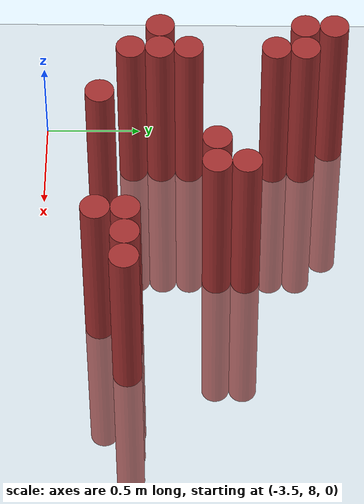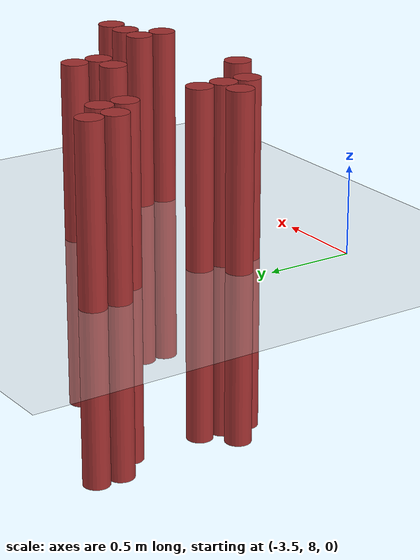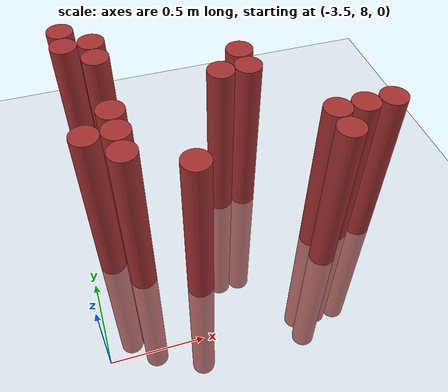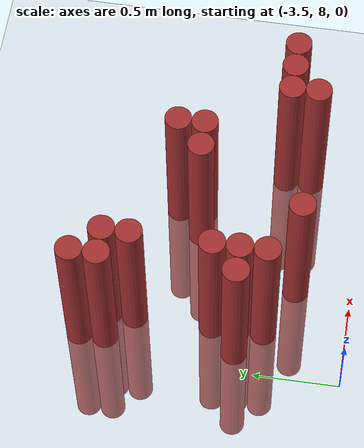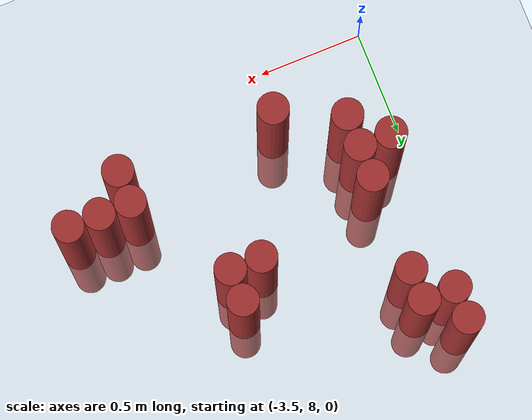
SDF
<sdf version="1.6">
 <world name="default">
  <model name="ground_plane">
   <static>1</static>
   <link name="link">
    <collision name="collision">
     <geometry><plane><normal>0 0 1</normal><size>100 100</size></plane></geometry>
     <surface><friction><ode><mu>100</mu><mu2>50</mu2></ode></friction></surface>
    </collision>
    <visual name="visual">
     <cast_shadows>0</cast_shadows>
     <geometry><plane><normal>0 0 1</normal><size>100 100</size></plane></geometry>
     <material>
      <script><uri>file://media/materials/scripts/gazebo.material</uri><name>Gazebo/Grey</name></script>
     </material>
    </visual>
   </link>
  </model>
  <model name="unit_cylinder_170">
   <static>1</static>
   <pose>-3.375000 8.625000 0.000000 0.000000 0.000000 0.000000</pose>
   <link name="link">
    <inertial>
     <mass>1</mass>
     <inertia><ixx>0.145833</ixx><ixy>0</ixy><ixz>0</ixz><iyy>0.145833</iyy><iyz>0</iyz><izz>0.125</izz></inertia>
    </inertial>
    <collision name="collision">
     <geometry><cylinder><radius>0.075000</radius><length>2</length></cylinder></geometry>
    </collision>
    <visual name="visual">
     <geometry><cylinder><radius>0.075000</radius><length>2</length></cylinder></geometry>
     <material>
      <ambient>0.648000 0.192000 0.192000 1</ambient>
      <diffuse>0.648000 0.192000 0.192000 1</diffuse>
     </material>
     <material>
      <script><name>Gazebo/Grey</name><uri>file://media/materials/scripts/gazebo.material</uri></script>
     </material>
    </visual>
   </link>
  </model>
  <model name="unit_cylinder_171">
   <static>1</static>
   <pose>-3.375000 9.375000 0.000000 0.000000 0.000000 0.000000</pose>
   <link name="link">
    <inertial>
     <mass>1</mass>
     <inertia><ixx>0.145833</ixx><ixy>0</ixy><ixz>0</ixz><iyy>0.145833</iyy><iyz>0</iyz><izz>0.125</izz></inertia>
    </inertial>
    <collision name="collision">
     <geometry><cylinder><radius>0.075000</radius><length>2</length></cylinder></geometry>
    </collision>
    <visual name="visual">
     <geometry><cylinder><radius>0.075000</radius><length>2</length></cylinder></geometry>
     <material>
      <ambient>0.648000 0.192000 0.192000 1</ambient>
      <diffuse>0.648000 0.192000 0.192000 1</diffuse>
     </material>
     <material>
      <script><name>Gazebo/Grey</name><uri>file://media/materials/scripts/gazebo.material</uri></script>
     </material>
    </visual>
   </link>
  </model>
  <model name="unit_cylinder_172">
   <static>1</static>
   <pose>-3.375000 9.525000 0.000000 0.000000 0.000000 0.000000</pose>
   <link name="link">
    <inertial>
     <mass>1</mass>
     <inertia><ixx>0.145833</ixx><ixy>0</ixy><ixz>0</ixz><iyy>0.145833</iyy><iyz>0</iyz><izz>0.125</izz></inertia>
    </inertial>
    <collision name="collision">
     <geometry><cylinder><radius>0.075000</radius><length>2</length></cylinder></geometry>
    </collision>
    <visual name="visual">
     <geometry><cylinder><radius>0.075000</radius><length>2</length></cylinder></geometry>
     <material>
      <ambient>0.648000 0.192000 0.192000 1</ambient>
      <diffuse>0.648000 0.192000 0.192000 1</diffuse>
     </material>
     <material>
      <script><name>Gazebo/Grey</name><uri>file://media/materials/scripts/gazebo.material</uri></script>
     </material>
    </visual>
   </link>
  </model>
  <model name="unit_cylinder_174">
   <static>1</static>
   <pose>-3.225000 8.475000 0.000000 0.000000 0.000000 0.000000</pose>
   <link name="link">
    <inertial>
     <mass>1</mass>
     <inertia><ixx>0.145833</ixx><ixy>0</ixy><ixz>0</ixz><iyy>0.145833</iyy><iyz>0</iyz><izz>0.125</izz></inertia>
    </inertial>
    <collision name="collision">
     <geometry><cylinder><radius>0.075000</radius><length>2</length></cylinder></geometry>
    </collision>
    <visual name="visual">
     <geometry><cylinder><radius>0.075000</radius><length>2</length></cylinder></geometry>
     <material>
      <ambient>0.648000 0.192000 0.192000 1</ambient>
      <diffuse>0.648000 0.192000 0.192000 1</diffuse>
     </material>
     <material>
      <script><name>Gazebo/Grey</name><uri>file://media/materials/scripts/gazebo.material</uri></script>
     </material>
    </visual>
   </link>
  </model>
  <model name="unit_cylinder_175">
   <static>1</static>
   <pose>-3.225000 8.625000 0.000000 0.000000 0.000000 0.000000</pose>
   <link name="link">
    <inertial>
     <mass>1</mass>
     <inertia><ixx>0.145833</ixx><ixy>0</ixy><ixz>0</ixz><iyy>0.145833</iyy><iyz>0</iyz><izz>0.125</izz></inertia>
    </inertial>
    <collision name="collision">
     <geometry><cylinder><radius>0.075000</radius><length>2</length></cylinder></geometry>
    </collision>
    <visual name="visual">
     <geometry><cylinder><radius>0.075000</radius><length>2</length></cylinder></geometry>
     <material>
      <ambient>0.648000 0.192000 0.192000 1</ambient>
      <diffuse>0.648000 0.192000 0.192000 1</diffuse>
     </material>
     <material>
      <script><name>Gazebo/Grey</name><uri>file://media/materials/scripts/gazebo.material</uri></script>
     </material>
    </visual>
   </link>
  </model>
  <model name="unit_cylinder_176">
   <static>1</static>
   <pose>-3.225000 8.775000 0.000000 0.000000 0.000000 0.000000</pose>
   <link name="link">
    <inertial>
     <mass>1</mass>
     <inertia><ixx>0.145833</ixx><ixy>0</ixy><ixz>0</ixz><iyy>0.145833</iyy><iyz>0</iyz><izz>0.125</izz></inertia>
    </inertial>
    <collision name="collision">
     <geometry><cylinder><radius>0.075000</radius><length>2</length></cylinder></geometry>
    </collision>
    <visual name="visual">
     <geometry><cylinder><radius>0.075000</radius><length>2</length></cylinder></geometry>
     <material>
      <ambient>0.648000 0.192000 0.192000 1</ambient>
      <diffuse>0.648000 0.192000 0.192000 1</diffuse>
     </material>
     <material>
      <script><name>Gazebo/Grey</name><uri>file://media/materials/scripts/gazebo.material</uri></script>
     </material>
    </visual>
   </link>
  </model>
  <model name="unit_cylinder_177">
   <static>1</static>
   <pose>-3.225000 9.225000 0.000000 0.000000 0.000000 0.000000</pose>
   <link name="link">
    <inertial>
     <mass>1</mass>
     <inertia><ixx>0.145833</ixx><ixy>0</ixy><ixz>0</ixz><iyy>0.145833</iyy><iyz>0</iyz><izz>0.125</izz></inertia>
    </inertial>
    <collision name="collision">
     <geometry><cylinder><radius>0.075000</radius><length>2</length></cylinder></geometry>
    </collision>
    <visual name="visual">
     <geometry><cylinder><radius>0.075000</radius><length>2</length></cylinder></geometry>
     <material>
      <ambient>0.648000 0.192000 0.192000 1</ambient>
      <diffuse>0.648000 0.192000 0.192000 1</diffuse>
     </material>
     <material>
      <script><name>Gazebo/Grey</name><uri>file://media/materials/scripts/gazebo.material</uri></script>
     </material>
    </visual>
   </link>
  </model>
  <model name="unit_cylinder_178">
   <static>1</static>
   <pose>-3.225000 9.375000 0.000000 0.000000 0.000000 0.000000</pose>
   <link name="link">
    <inertial>
     <mass>1</mass>
     <inertia><ixx>0.145833</ixx><ixy>0</ixy><ixz>0</ixz><iyy>0.145833</iyy><iyz>0</iyz><izz>0.125</izz></inertia>
    </inertial>
    <collision name="collision">
     <geometry><cylinder><radius>0.075000</radius><length>2</length></cylinder></geometry>
    </collision>
    <visual name="visual">
     <geometry><cylinder><radius>0.075000</radius><length>2</length></cylinder></geometry>
     <material>
      <ambient>0.648000 0.192000 0.192000 1</ambient>
      <diffuse>0.648000 0.192000 0.192000 1</diffuse>
     </material>
     <material>
      <script><name>Gazebo/Grey</name><uri>file://media/materials/scripts/gazebo.material</uri></script>
     </material>
    </visual>
   </link>
  </model>
  <model name="unit_cylinder_181">
   <static>1</static>
   <pose>-2.925000 8.325000 0.000000 0.000000 0.000000 0.000000</pose>
   <link name="link">
    <inertial>
     <mass>1</mass>
     <inertia><ixx>0.145833</ixx><ixy>0</ixy><ixz>0</ixz><iyy>0.145833</iyy><iyz>0</iyz><izz>0.125</izz></inertia>
    </inertial>
    <collision name="collision">
     <geometry><cylinder><radius>0.075000</radius><length>2</length></cylinder></geometry>
    </collision>
    <visual name="visual">
     <geometry><cylinder><radius>0.075000</radius><length>2</length></cylinder></geometry>
     <material>
      <ambient>0.648000 0.192000 0.192000 1</ambient>
      <diffuse>0.648000 0.192000 0.192000 1</diffuse>
     </material>
     <material>
      <script><name>Gazebo/Grey</name><uri>file://media/materials/scripts/gazebo.material</uri></script>
     </material>
    </visual>
   </link>
  </model>
  <model name="unit_cylinder_184">
   <static>1</static>
   <pose>-2.625000 8.925000 0.000000 0.000000 0.000000 0.000000</pose>
   <link name="link">
    <inertial>
     <mass>1</mass>
     <inertia><ixx>0.145833</ixx><ixy>0</ixy><ixz>0</ixz><iyy>0.145833</iyy><iyz>0</iyz><izz>0.125</izz></inertia>
    </inertial>
    <collision name="collision">
     <geometry><cylinder><radius>0.075000</radius><length>2</length></cylinder></geometry>
    </collision>
    <visual name="visual">
     <geometry><cylinder><radius>0.075000</radius><length>2</length></cylinder></geometry>
     <material>
      <ambient>0.648000 0.192000 0.192000 1</ambient>
      <diffuse>0.648000 0.192000 0.192000 1</diffuse>
     </material>
     <material>
      <script><name>Gazebo/Grey</name><uri>file://media/materials/scripts/gazebo.material</uri></script>
     </material>
    </visual>
   </link>
  </model>
  <model name="unit_cylinder_185">
   <static>1</static>
   <pose>-2.475000 8.925000 0.000000 0.000000 0.000000 0.000000</pose>
   <link name="link">
    <inertial>
     <mass>1</mass>
     <inertia><ixx>0.145833</ixx><ixy>0</ixy><ixz>0</ixz><iyy>0.145833</iyy><iyz>0</iyz><izz>0.125</izz></inertia>
    </inertial>
    <collision name="collision">
     <geometry><cylinder><radius>0.075000</radius><length>2</length></cylinder></geometry>
    </collision>
    <visual name="visual">
     <geometry><cylinder><radius>0.075000</radius><length>2</length></cylinder></geometry>
     <material>
      <ambient>0.648000 0.192000 0.192000 1</ambient>
      <diffuse>0.648000 0.192000 0.192000 1</diffuse>
     </material>
     <material>
      <script><name>Gazebo/Grey</name><uri>file://media/materials/scripts/gazebo.material</uri></script>
     </material>
    </visual>
   </link>
  </model>
  <model name="unit_cylinder_186">
   <static>1</static>
   <pose>-2.475000 9.075000 0.000000 0.000000 0.000000 0.000000</pose>
   <link name="link">
    <inertial>
     <mass>1</mass>
     <inertia><ixx>0.145833</ixx><ixy>0</ixy><ixz>0</ixz><iyy>0.145833</iyy><iyz>0</iyz><izz>0.125</izz></inertia>
    </inertial>
    <collision name="collision">
     <geometry><cylinder><radius>0.075000</radius><length>2</length></cylinder></geometry>
    </collision>
    <visual name="visual">
     <geometry><cylinder><radius>0.075000</radius><length>2</length></cylinder></geometry>
     <material>
      <ambient>0.648000 0.192000 0.192000 1</ambient>
      <diffuse>0.648000 0.192000 0.192000 1</diffuse>
     </material>
     <material>
      <script><name>Gazebo/Grey</name><uri>file://media/materials/scripts/gazebo.material</uri></script>
     </material>
    </visual>
   </link>
  </model>
  <model name="unit_cylinder_187">
   <static>1</static>
   <pose>-2.175000 8.325000 0.000000 0.000000 0.000000 0.000000</pose>
   <link name="link">
    <inertial>
     <mass>1</mass>
     <inertia><ixx>0.145833</ixx><ixy>0</ixy><ixz>0</ixz><iyy>0.145833</iyy><iyz>0</iyz><izz>0.125</izz></inertia>
    </inertial>
    <collision name="collision">
     <geometry><cylinder><radius>0.075000</radius><length>2</length></cylinder></geometry>
    </collision>
    <visual name="visual">
     <geometry><cylinder><radius>0.075000</radius><length>2</length></cylinder></geometry>
     <material>
      <ambient>0.648000 0.192000 0.192000 1</ambient>
      <diffuse>0.648000 0.192000 0.192000 1</diffuse>
     </material>
     <material>
      <script><name>Gazebo/Grey</name><uri>file://media/materials/scripts/gazebo.material</uri></script>
     </material>
    </visual>
   </link>
  </model>
  <model name="unit_cylinder_188">
   <static>1</static>
   <pose>-2.175000 8.475000 0.000000 0.000000 0.000000 0.000000</pose>
   <link name="link">
    <inertial>
     <mass>1</mass>
     <inertia><ixx>0.145833</ixx><ixy>0</ixy><ixz>0</ixz><iyy>0.145833</iyy><iyz>0</iyz><izz>0.125</izz></inertia>
    </inertial>
    <collision name="collision">
     <geometry><cylinder><radius>0.075000</radius><length>2</length></cylinder></geometry>
    </collision>
    <visual name="visual">
     <geometry><cylinder><radius>0.075000</radius><length>2</length></cylinder></geometry>
     <material>
      <ambient>0.648000 0.192000 0.192000 1</ambient>
      <diffuse>0.648000 0.192000 0.192000 1</diffuse>
     </material>
     <material>
      <script><name>Gazebo/Grey</name><uri>file://media/materials/scripts/gazebo.material</uri></script>
     </material>
    </visual>
   </link>
  </model>
  <model name="unit_cylinder_190">
   <static>1</static>
   <pose>-2.025000 8.475000 0.000000 0.000000 0.000000 0.000000</pose>
   <link name="link">
    <inertial>
     <mass>1</mass>
     <inertia><ixx>0.145833</ixx><ixy>0</ixy><ixz>0</ixz><iyy>0.145833</iyy><iyz>0</iyz><izz>0.125</izz></inertia>
    </inertial>
    <collision name="collision">
     <geometry><cylinder><radius>0.075000</radius><length>2</length></cylinder></geometry>
    </collision>
    <visual name="visual">
     <geometry><cylinder><radius>0.075000</radius><length>2</length></cylinder></geometry>
     <material>
      <ambient>0.648000 0.192000 0.192000 1</ambient>
      <diffuse>0.648000 0.192000 0.192000 1</diffuse>
     </material>
     <material>
      <script><name>Gazebo/Grey</name><uri>file://media/materials/scripts/gazebo.material</uri></script>
     </material>
    </visual>
   </link>
  </model>
  <model name="unit_cylinder_193">
   <static>1</static>
   <pose>-1.875000 8.475000 0.000000 0.000000 0.000000 0.000000</pose>
   <link name="link">
    <inertial>
     <mass>1</mass>
     <inertia><ixx>0.145833</ixx><ixy>0</ixy><ixz>0</ixz><iyy>0.145833</iyy><iyz>0</iyz><izz>0.125</izz></inertia>
    </inertial>
    <collision name="collision">
     <geometry><cylinder><radius>0.075000</radius><length>2</length></cylinder></geometry>
    </collision>
    <visual name="visual">
     <geometry><cylinder><radius>0.075000</radius><length>2</length></cylinder></geometry>
     <material>
      <ambient>0.648000 0.192000 0.192000 1</ambient>
      <diffuse>0.648000 0.192000 0.192000 1</diffuse>
     </material>
     <material>
      <script><name>Gazebo/Grey</name><uri>file://media/materials/scripts/gazebo.material</uri></script>
     </material>
    </visual>
   </link>
  </model>
 </world>
</sdf>
